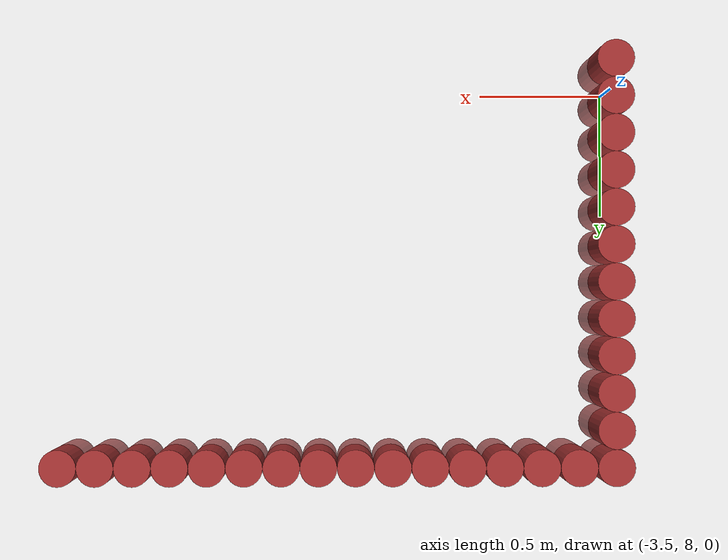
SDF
<sdf version="1.6">
 <world name="default">
  <model name="ground_plane">
   <static>1</static>
   <link name="link">
    <collision name="collision">
     <geometry><plane><normal>0 0 1</normal><size>100 100</size></plane></geometry>
     <surface><friction><ode><mu>100</mu><mu2>50</mu2></ode></friction></surface>
    </collision>
    <visual name="visual">
     <cast_shadows>0</cast_shadows>
     <geometry><plane><normal>0 0 1</normal><size>100 100</size></plane></geometry>
     <material>
      <script><uri>file://media/materials/scripts/gazebo.material</uri><name>Gazebo/Grey</name></script>
     </material>
    </visual>
   </link>
  </model>
  <model name="unit_cylinder_351">
   <static>1</static>
   <pose>-3.525000 7.875000 0.000000 0.000000 0.000000 0.000000</pose>
   <link name="link">
    <inertial>
     <mass>1</mass>
     <inertia><ixx>0.145833</ixx><ixy>0</ixy><ixz>0</ixz><iyy>0.145833</iyy><iyz>0</iyz><izz>0.125</izz></inertia>
    </inertial>
    <collision name="collision">
     <geometry><cylinder><radius>0.075000</radius><length>1</length></cylinder></geometry>
    </collision>
    <visual name="visual">
     <geometry><cylinder><radius>0.075000</radius><length>1</length></cylinder></geometry>
     <material>
      <ambient>0.648000 0.192000 0.192000 1</ambient>
      <diffuse>0.648000 0.192000 0.192000 1</diffuse>
     </material>
     <material>
      <script><name>Gazebo/Grey</name><uri>file://media/materials/scripts/gazebo.material</uri></script>
     </material>
    </visual>
   </link>
  </model>
  <model name="unit_cylinder_352">
   <static>1</static>
   <pose>-3.525000 8.025000 0.000000 0.000000 0.000000 0.000000</pose>
   <link name="link">
    <inertial>
     <mass>1</mass>
     <inertia><ixx>0.145833</ixx><ixy>0</ixy><ixz>0</ixz><iyy>0.145833</iyy><iyz>0</iyz><izz>0.125</izz></inertia>
    </inertial>
    <collision name="collision">
     <geometry><cylinder><radius>0.075000</radius><length>1</length></cylinder></geometry>
    </collision>
    <visual name="visual">
     <geometry><cylinder><radius>0.075000</radius><length>1</length></cylinder></geometry>
     <material>
      <ambient>0.648000 0.192000 0.192000 1</ambient>
      <diffuse>0.648000 0.192000 0.192000 1</diffuse>
     </material>
     <material>
      <script><name>Gazebo/Grey</name><uri>file://media/materials/scripts/gazebo.material</uri></script>
     </material>
    </visual>
   </link>
  </model>
  <model name="unit_cylinder_353">
   <static>1</static>
   <pose>-3.525000 8.175000 0.000000 0.000000 0.000000 0.000000</pose>
   <link name="link">
    <inertial>
     <mass>1</mass>
     <inertia><ixx>0.145833</ixx><ixy>0</ixy><ixz>0</ixz><iyy>0.145833</iyy><iyz>0</iyz><izz>0.125</izz></inertia>
    </inertial>
    <collision name="collision">
     <geometry><cylinder><radius>0.075000</radius><length>1</length></cylinder></geometry>
    </collision>
    <visual name="visual">
     <geometry><cylinder><radius>0.075000</radius><length>1</length></cylinder></geometry>
     <material>
      <ambient>0.648000 0.192000 0.192000 1</ambient>
      <diffuse>0.648000 0.192000 0.192000 1</diffuse>
     </material>
     <material>
      <script><name>Gazebo/Grey</name><uri>file://media/materials/scripts/gazebo.material</uri></script>
     </material>
    </visual>
   </link>
  </model>
  <model name="unit_cylinder_354">
   <static>1</static>
   <pose>-3.525000 8.325000 0.000000 0.000000 0.000000 0.000000</pose>
   <link name="link">
    <inertial>
     <mass>1</mass>
     <inertia><ixx>0.145833</ixx><ixy>0</ixy><ixz>0</ixz><iyy>0.145833</iyy><iyz>0</iyz><izz>0.125</izz></inertia>
    </inertial>
    <collision name="collision">
     <geometry><cylinder><radius>0.075000</radius><length>1</length></cylinder></geometry>
    </collision>
    <visual name="visual">
     <geometry><cylinder><radius>0.075000</radius><length>1</length></cylinder></geometry>
     <material>
      <ambient>0.648000 0.192000 0.192000 1</ambient>
      <diffuse>0.648000 0.192000 0.192000 1</diffuse>
     </material>
     <material>
      <script><name>Gazebo/Grey</name><uri>file://media/materials/scripts/gazebo.material</uri></script>
     </material>
    </visual>
   </link>
  </model>
  <model name="unit_cylinder_355">
   <static>1</static>
   <pose>-3.525000 8.475000 0.000000 0.000000 0.000000 0.000000</pose>
   <link name="link">
    <inertial>
     <mass>1</mass>
     <inertia><ixx>0.145833</ixx><ixy>0</ixy><ixz>0</ixz><iyy>0.145833</iyy><iyz>0</iyz><izz>0.125</izz></inertia>
    </inertial>
    <collision name="collision">
     <geometry><cylinder><radius>0.075000</radius><length>1</length></cylinder></geometry>
    </collision>
    <visual name="visual">
     <geometry><cylinder><radius>0.075000</radius><length>1</length></cylinder></geometry>
     <material>
      <ambient>0.648000 0.192000 0.192000 1</ambient>
      <diffuse>0.648000 0.192000 0.192000 1</diffuse>
     </material>
     <material>
      <script><name>Gazebo/Grey</name><uri>file://media/materials/scripts/gazebo.material</uri></script>
     </material>
    </visual>
   </link>
  </model>
  <model name="unit_cylinder_356">
   <static>1</static>
   <pose>-3.525000 8.625000 0.000000 0.000000 0.000000 0.000000</pose>
   <link name="link">
    <inertial>
     <mass>1</mass>
     <inertia><ixx>0.145833</ixx><ixy>0</ixy><ixz>0</ixz><iyy>0.145833</iyy><iyz>0</iyz><izz>0.125</izz></inertia>
    </inertial>
    <collision name="collision">
     <geometry><cylinder><radius>0.075000</radius><length>1</length></cylinder></geometry>
    </collision>
    <visual name="visual">
     <geometry><cylinder><radius>0.075000</radius><length>1</length></cylinder></geometry>
     <material>
      <ambient>0.648000 0.192000 0.192000 1</ambient>
      <diffuse>0.648000 0.192000 0.192000 1</diffuse>
     </material>
     <material>
      <script><name>Gazebo/Grey</name><uri>file://media/materials/scripts/gazebo.material</uri></script>
     </material>
    </visual>
   </link>
  </model>
  <model name="unit_cylinder_357">
   <static>1</static>
   <pose>-3.525000 8.775000 0.000000 0.000000 0.000000 0.000000</pose>
   <link name="link">
    <inertial>
     <mass>1</mass>
     <inertia><ixx>0.145833</ixx><ixy>0</ixy><ixz>0</ixz><iyy>0.145833</iyy><iyz>0</iyz><izz>0.125</izz></inertia>
    </inertial>
    <collision name="collision">
     <geometry><cylinder><radius>0.075000</radius><length>1</length></cylinder></geometry>
    </collision>
    <visual name="visual">
     <geometry><cylinder><radius>0.075000</radius><length>1</length></cylinder></geometry>
     <material>
      <ambient>0.648000 0.192000 0.192000 1</ambient>
      <diffuse>0.648000 0.192000 0.192000 1</diffuse>
     </material>
     <material>
      <script><name>Gazebo/Grey</name><uri>file://media/materials/scripts/gazebo.material</uri></script>
     </material>
    </visual>
   </link>
  </model>
  <model name="unit_cylinder_358">
   <static>1</static>
   <pose>-3.525000 8.925000 0.000000 0.000000 0.000000 0.000000</pose>
   <link name="link">
    <inertial>
     <mass>1</mass>
     <inertia><ixx>0.145833</ixx><ixy>0</ixy><ixz>0</ixz><iyy>0.145833</iyy><iyz>0</iyz><izz>0.125</izz></inertia>
    </inertial>
    <collision name="collision">
     <geometry><cylinder><radius>0.075000</radius><length>1</length></cylinder></geometry>
    </collision>
    <visual name="visual">
     <geometry><cylinder><radius>0.075000</radius><length>1</length></cylinder></geometry>
     <material>
      <ambient>0.648000 0.192000 0.192000 1</ambient>
      <diffuse>0.648000 0.192000 0.192000 1</diffuse>
     </material>
     <material>
      <script><name>Gazebo/Grey</name><uri>file://media/materials/scripts/gazebo.material</uri></script>
     </material>
    </visual>
   </link>
  </model>
  <model name="unit_cylinder_359">
   <static>1</static>
   <pose>-3.525000 9.075000 0.000000 0.000000 0.000000 0.000000</pose>
   <link name="link">
    <inertial>
     <mass>1</mass>
     <inertia><ixx>0.145833</ixx><ixy>0</ixy><ixz>0</ixz><iyy>0.145833</iyy><iyz>0</iyz><izz>0.125</izz></inertia>
    </inertial>
    <collision name="collision">
     <geometry><cylinder><radius>0.075000</radius><length>1</length></cylinder></geometry>
    </collision>
    <visual name="visual">
     <geometry><cylinder><radius>0.075000</radius><length>1</length></cylinder></geometry>
     <material>
      <ambient>0.648000 0.192000 0.192000 1</ambient>
      <diffuse>0.648000 0.192000 0.192000 1</diffuse>
     </material>
     <material>
      <script><name>Gazebo/Grey</name><uri>file://media/materials/scripts/gazebo.material</uri></script>
     </material>
    </visual>
   </link>
  </model>
  <model name="unit_cylinder_360">
   <static>1</static>
   <pose>-3.525000 9.225000 0.000000 0.000000 0.000000 0.000000</pose>
   <link name="link">
    <inertial>
     <mass>1</mass>
     <inertia><ixx>0.145833</ixx><ixy>0</ixy><ixz>0</ixz><iyy>0.145833</iyy><iyz>0</iyz><izz>0.125</izz></inertia>
    </inertial>
    <collision name="collision">
     <geometry><cylinder><radius>0.075000</radius><length>1</length></cylinder></geometry>
    </collision>
    <visual name="visual">
     <geometry><cylinder><radius>0.075000</radius><length>1</length></cylinder></geometry>
     <material>
      <ambient>0.648000 0.192000 0.192000 1</ambient>
      <diffuse>0.648000 0.192000 0.192000 1</diffuse>
     </material>
     <material>
      <script><name>Gazebo/Grey</name><uri>file://media/materials/scripts/gazebo.material</uri></script>
     </material>
    </visual>
   </link>
  </model>
  <model name="unit_cylinder_361">
   <static>1</static>
   <pose>-3.525000 9.375000 0.000000 0.000000 0.000000 0.000000</pose>
   <link name="link">
    <inertial>
     <mass>1</mass>
     <inertia><ixx>0.145833</ixx><ixy>0</ixy><ixz>0</ixz><iyy>0.145833</iyy><iyz>0</iyz><izz>0.125</izz></inertia>
    </inertial>
    <collision name="collision">
     <geometry><cylinder><radius>0.075000</radius><length>1</length></cylinder></geometry>
    </collision>
    <visual name="visual">
     <geometry><cylinder><radius>0.075000</radius><length>1</length></cylinder></geometry>
     <material>
      <ambient>0.648000 0.192000 0.192000 1</ambient>
      <diffuse>0.648000 0.192000 0.192000 1</diffuse>
     </material>
     <material>
      <script><name>Gazebo/Grey</name><uri>file://media/materials/scripts/gazebo.material</uri></script>
     </material>
    </visual>
   </link>
  </model>
  <model name="unit_cylinder_362">
   <static>1</static>
   <pose>-3.525000 9.525000 0.000000 0.000000 0.000000 0.000000</pose>
   <link name="link">
    <inertial>
     <mass>1</mass>
     <inertia><ixx>0.145833</ixx><ixy>0</ixy><ixz>0</ixz><iyy>0.145833</iyy><iyz>0</iyz><izz>0.125</izz></inertia>
    </inertial>
    <collision name="collision">
     <geometry><cylinder><radius>0.075000</radius><length>1</length></cylinder></geometry>
    </collision>
    <visual name="visual">
     <geometry><cylinder><radius>0.075000</radius><length>1</length></cylinder></geometry>
     <material>
      <ambient>0.648000 0.192000 0.192000 1</ambient>
      <diffuse>0.648000 0.192000 0.192000 1</diffuse>
     </material>
     <material>
      <script><name>Gazebo/Grey</name><uri>file://media/materials/scripts/gazebo.material</uri></script>
     </material>
    </visual>
   </link>
  </model>
  <model name="unit_cylinder_364">
   <static>1</static>
   <pose>-3.375000 9.525000 0.000000 0.000000 0.000000 0.000000</pose>
   <link name="link">
    <inertial>
     <mass>1</mass>
     <inertia><ixx>0.145833</ixx><ixy>0</ixy><ixz>0</ixz><iyy>0.145833</iyy><iyz>0</iyz><izz>0.125</izz></inertia>
    </inertial>
    <collision name="collision">
     <geometry><cylinder><radius>0.075000</radius><length>1</length></cylinder></geometry>
    </collision>
    <visual name="visual">
     <geometry><cylinder><radius>0.075000</radius><length>1</length></cylinder></geometry>
     <material>
      <ambient>0.648000 0.192000 0.192000 1</ambient>
      <diffuse>0.648000 0.192000 0.192000 1</diffuse>
     </material>
     <material>
      <script><name>Gazebo/Grey</name><uri>file://media/materials/scripts/gazebo.material</uri></script>
     </material>
    </visual>
   </link>
  </model>
  <model name="unit_cylinder_366">
   <static>1</static>
   <pose>-3.225000 9.525000 0.000000 0.000000 0.000000 0.000000</pose>
   <link name="link">
    <inertial>
     <mass>1</mass>
     <inertia><ixx>0.145833</ixx><ixy>0</ixy><ixz>0</ixz><iyy>0.145833</iyy><iyz>0</iyz><izz>0.125</izz></inertia>
    </inertial>
    <collision name="collision">
     <geometry><cylinder><radius>0.075000</radius><length>1</length></cylinder></geometry>
    </collision>
    <visual name="visual">
     <geometry><cylinder><radius>0.075000</radius><length>1</length></cylinder></geometry>
     <material>
      <ambient>0.648000 0.192000 0.192000 1</ambient>
      <diffuse>0.648000 0.192000 0.192000 1</diffuse>
     </material>
     <material>
      <script><name>Gazebo/Grey</name><uri>file://media/materials/scripts/gazebo.material</uri></script>
     </material>
    </visual>
   </link>
  </model>
  <model name="unit_cylinder_368">
   <static>1</static>
   <pose>-3.075000 9.525000 0.000000 0.000000 0.000000 0.000000</pose>
   <link name="link">
    <inertial>
     <mass>1</mass>
     <inertia><ixx>0.145833</ixx><ixy>0</ixy><ixz>0</ixz><iyy>0.145833</iyy><iyz>0</iyz><izz>0.125</izz></inertia>
    </inertial>
    <collision name="collision">
     <geometry><cylinder><radius>0.075000</radius><length>1</length></cylinder></geometry>
    </collision>
    <visual name="visual">
     <geometry><cylinder><radius>0.075000</radius><length>1</length></cylinder></geometry>
     <material>
      <ambient>0.648000 0.192000 0.192000 1</ambient>
      <diffuse>0.648000 0.192000 0.192000 1</diffuse>
     </material>
     <material>
      <script><name>Gazebo/Grey</name><uri>file://media/materials/scripts/gazebo.material</uri></script>
     </material>
    </visual>
   </link>
  </model>
  <model name="unit_cylinder_370">
   <static>1</static>
   <pose>-2.925000 9.525000 0.000000 0.000000 0.000000 0.000000</pose>
   <link name="link">
    <inertial>
     <mass>1</mass>
     <inertia><ixx>0.145833</ixx><ixy>0</ixy><ixz>0</ixz><iyy>0.145833</iyy><iyz>0</iyz><izz>0.125</izz></inertia>
    </inertial>
    <collision name="collision">
     <geometry><cylinder><radius>0.075000</radius><length>1</length></cylinder></geometry>
    </collision>
    <visual name="visual">
     <geometry><cylinder><radius>0.075000</radius><length>1</length></cylinder></geometry>
     <material>
      <ambient>0.648000 0.192000 0.192000 1</ambient>
      <diffuse>0.648000 0.192000 0.192000 1</diffuse>
     </material>
     <material>
      <script><name>Gazebo/Grey</name><uri>file://media/materials/scripts/gazebo.material</uri></script>
     </material>
    </visual>
   </link>
  </model>
  <model name="unit_cylinder_372">
   <static>1</static>
   <pose>-2.775000 9.525000 0.000000 0.000000 0.000000 0.000000</pose>
   <link name="link">
    <inertial>
     <mass>1</mass>
     <inertia><ixx>0.145833</ixx><ixy>0</ixy><ixz>0</ixz><iyy>0.145833</iyy><iyz>0</iyz><izz>0.125</izz></inertia>
    </inertial>
    <collision name="collision">
     <geometry><cylinder><radius>0.075000</radius><length>1</length></cylinder></geometry>
    </collision>
    <visual name="visual">
     <geometry><cylinder><radius>0.075000</radius><length>1</length></cylinder></geometry>
     <material>
      <ambient>0.648000 0.192000 0.192000 1</ambient>
      <diffuse>0.648000 0.192000 0.192000 1</diffuse>
     </material>
     <material>
      <script><name>Gazebo/Grey</name><uri>file://media/materials/scripts/gazebo.material</uri></script>
     </material>
    </visual>
   </link>
  </model>
  <model name="unit_cylinder_374">
   <static>1</static>
   <pose>-2.625000 9.525000 0.000000 0.000000 0.000000 0.000000</pose>
   <link name="link">
    <inertial>
     <mass>1</mass>
     <inertia><ixx>0.145833</ixx><ixy>0</ixy><ixz>0</ixz><iyy>0.145833</iyy><iyz>0</iyz><izz>0.125</izz></inertia>
    </inertial>
    <collision name="collision">
     <geometry><cylinder><radius>0.075000</radius><length>1</length></cylinder></geometry>
    </collision>
    <visual name="visual">
     <geometry><cylinder><radius>0.075000</radius><length>1</length></cylinder></geometry>
     <material>
      <ambient>0.648000 0.192000 0.192000 1</ambient>
      <diffuse>0.648000 0.192000 0.192000 1</diffuse>
     </material>
     <material>
      <script><name>Gazebo/Grey</name><uri>file://media/materials/scripts/gazebo.material</uri></script>
     </material>
    </visual>
   </link>
  </model>
  <model name="unit_cylinder_376">
   <static>1</static>
   <pose>-2.475000 9.525000 0.000000 0.000000 0.000000 0.000000</pose>
   <link name="link">
    <inertial>
     <mass>1</mass>
     <inertia><ixx>0.145833</ixx><ixy>0</ixy><ixz>0</ixz><iyy>0.145833</iyy><iyz>0</iyz><izz>0.125</izz></inertia>
    </inertial>
    <collision name="collision">
     <geometry><cylinder><radius>0.075000</radius><length>1</length></cylinder></geometry>
    </collision>
    <visual name="visual">
     <geometry><cylinder><radius>0.075000</radius><length>1</length></cylinder></geometry>
     <material>
      <ambient>0.648000 0.192000 0.192000 1</ambient>
      <diffuse>0.648000 0.192000 0.192000 1</diffuse>
     </material>
     <material>
      <script><name>Gazebo/Grey</name><uri>file://media/materials/scripts/gazebo.material</uri></script>
     </material>
    </visual>
   </link>
  </model>
  <model name="unit_cylinder_378">
   <static>1</static>
   <pose>-2.325000 9.525000 0.000000 0.000000 0.000000 0.000000</pose>
   <link name="link">
    <inertial>
     <mass>1</mass>
     <inertia><ixx>0.145833</ixx><ixy>0</ixy><ixz>0</ixz><iyy>0.145833</iyy><iyz>0</iyz><izz>0.125</izz></inertia>
    </inertial>
    <collision name="collision">
     <geometry><cylinder><radius>0.075000</radius><length>1</length></cylinder></geometry>
    </collision>
    <visual name="visual">
     <geometry><cylinder><radius>0.075000</radius><length>1</length></cylinder></geometry>
     <material>
      <ambient>0.648000 0.192000 0.192000 1</ambient>
      <diffuse>0.648000 0.192000 0.192000 1</diffuse>
     </material>
     <material>
      <script><name>Gazebo/Grey</name><uri>file://media/materials/scripts/gazebo.material</uri></script>
     </material>
    </visual>
   </link>
  </model>
  <model name="unit_cylinder_380">
   <static>1</static>
   <pose>-2.175000 9.525000 0.000000 0.000000 0.000000 0.000000</pose>
   <link name="link">
    <inertial>
     <mass>1</mass>
     <inertia><ixx>0.145833</ixx><ixy>0</ixy><ixz>0</ixz><iyy>0.145833</iyy><iyz>0</iyz><izz>0.125</izz></inertia>
    </inertial>
    <collision name="collision">
     <geometry><cylinder><radius>0.075000</radius><length>1</length></cylinder></geometry>
    </collision>
    <visual name="visual">
     <geometry><cylinder><radius>0.075000</radius><length>1</length></cylinder></geometry>
     <material>
      <ambient>0.648000 0.192000 0.192000 1</ambient>
      <diffuse>0.648000 0.192000 0.192000 1</diffuse>
     </material>
     <material>
      <script><name>Gazebo/Grey</name><uri>file://media/materials/scripts/gazebo.material</uri></script>
     </material>
    </visual>
   </link>
  </model>
  <model name="unit_cylinder_382">
   <static>1</static>
   <pose>-2.025000 9.525000 0.000000 0.000000 0.000000 0.000000</pose>
   <link name="link">
    <inertial>
     <mass>1</mass>
     <inertia><ixx>0.145833</ixx><ixy>0</ixy><ixz>0</ixz><iyy>0.145833</iyy><iyz>0</iyz><izz>0.125</izz></inertia>
    </inertial>
    <collision name="collision">
     <geometry><cylinder><radius>0.075000</radius><length>1</length></cylinder></geometry>
    </collision>
    <visual name="visual">
     <geometry><cylinder><radius>0.075000</radius><length>1</length></cylinder></geometry>
     <material>
      <ambient>0.648000 0.192000 0.192000 1</ambient>
      <diffuse>0.648000 0.192000 0.192000 1</diffuse>
     </material>
     <material>
      <script><name>Gazebo/Grey</name><uri>file://media/materials/scripts/gazebo.material</uri></script>
     </material>
    </visual>
   </link>
  </model>
  <model name="unit_cylinder_384">
   <static>1</static>
   <pose>-1.875000 9.525000 0.000000 0.000000 0.000000 0.000000</pose>
   <link name="link">
    <inertial>
     <mass>1</mass>
     <inertia><ixx>0.145833</ixx><ixy>0</ixy><ixz>0</ixz><iyy>0.145833</iyy><iyz>0</iyz><izz>0.125</izz></inertia>
    </inertial>
    <collision name="collision">
     <geometry><cylinder><radius>0.075000</radius><length>1</length></cylinder></geometry>
    </collision>
    <visual name="visual">
     <geometry><cylinder><radius>0.075000</radius><length>1</length></cylinder></geometry>
     <material>
      <ambient>0.648000 0.192000 0.192000 1</ambient>
      <diffuse>0.648000 0.192000 0.192000 1</diffuse>
     </material>
     <material>
      <script><name>Gazebo/Grey</name><uri>file://media/materials/scripts/gazebo.material</uri></script>
     </material>
    </visual>
   </link>
  </model>
  <model name="unit_cylinder_386">
   <static>1</static>
   <pose>-1.725000 9.525000 0.000000 0.000000 0.000000 0.000000</pose>
   <link name="link">
    <inertial>
     <mass>1</mass>
     <inertia><ixx>0.145833</ixx><ixy>0</ixy><ixz>0</ixz><iyy>0.145833</iyy><iyz>0</iyz><izz>0.125</izz></inertia>
    </inertial>
    <collision name="collision">
     <geometry><cylinder><radius>0.075000</radius><length>1</length></cylinder></geometry>
    </collision>
    <visual name="visual">
     <geometry><cylinder><radius>0.075000</radius><length>1</length></cylinder></geometry>
     <material>
      <ambient>0.648000 0.192000 0.192000 1</ambient>
      <diffuse>0.648000 0.192000 0.192000 1</diffuse>
     </material>
     <material>
      <script><name>Gazebo/Grey</name><uri>file://media/materials/scripts/gazebo.material</uri></script>
     </material>
    </visual>
   </link>
  </model>
  <model name="unit_cylinder_388">
   <static>1</static>
   <pose>-1.575000 9.525000 0.000000 0.000000 0.000000 0.000000</pose>
   <link name="link">
    <inertial>
     <mass>1</mass>
     <inertia><ixx>0.145833</ixx><ixy>0</ixy><ixz>0</ixz><iyy>0.145833</iyy><iyz>0</iyz><izz>0.125</izz></inertia>
    </inertial>
    <collision name="collision">
     <geometry><cylinder><radius>0.075000</radius><length>1</length></cylinder></geometry>
    </collision>
    <visual name="visual">
     <geometry><cylinder><radius>0.075000</radius><length>1</length></cylinder></geometry>
     <material>
      <ambient>0.648000 0.192000 0.192000 1</ambient>
      <diffuse>0.648000 0.192000 0.192000 1</diffuse>
     </material>
     <material>
      <script><name>Gazebo/Grey</name><uri>file://media/materials/scripts/gazebo.material</uri></script>
     </material>
    </visual>
   </link>
  </model>
  <model name="unit_cylinder_390">
   <static>1</static>
   <pose>-1.425000 9.525000 0.000000 0.000000 0.000000 0.000000</pose>
   <link name="link">
    <inertial>
     <mass>1</mass>
     <inertia><ixx>0.145833</ixx><ixy>0</ixy><ixz>0</ixz><iyy>0.145833</iyy><iyz>0</iyz><izz>0.125</izz></inertia>
    </inertial>
    <collision name="collision">
     <geometry><cylinder><radius>0.075000</radius><length>1</length></cylinder></geometry>
    </collision>
    <visual name="visual">
     <geometry><cylinder><radius>0.075000</radius><length>1</length></cylinder></geometry>
     <material>
      <ambient>0.648000 0.192000 0.192000 1</ambient>
      <diffuse>0.648000 0.192000 0.192000 1</diffuse>
     </material>
     <material>
      <script><name>Gazebo/Grey</name><uri>file://media/materials/scripts/gazebo.material</uri></script>
     </material>
    </visual>
   </link>
  </model>
  <model name="unit_cylinder_392">
   <static>1</static>
   <pose>-1.275000 9.525000 0.000000 0.000000 0.000000 0.000000</pose>
   <link name="link">
    <inertial>
     <mass>1</mass>
     <inertia><ixx>0.145833</ixx><ixy>0</ixy><ixz>0</ixz><iyy>0.145833</iyy><iyz>0</iyz><izz>0.125</izz></inertia>
    </inertial>
    <collision name="collision">
     <geometry><cylinder><radius>0.075000</radius><length>1</length></cylinder></geometry>
    </collision>
    <visual name="visual">
     <geometry><cylinder><radius>0.075000</radius><length>1</length></cylinder></geometry>
     <material>
      <ambient>0.648000 0.192000 0.192000 1</ambient>
      <diffuse>0.648000 0.192000 0.192000 1</diffuse>
     </material>
     <material>
      <script><name>Gazebo/Grey</name><uri>file://media/materials/scripts/gazebo.material</uri></script>
     </material>
    </visual>
   </link>
  </model>
 </world>
</sdf>
